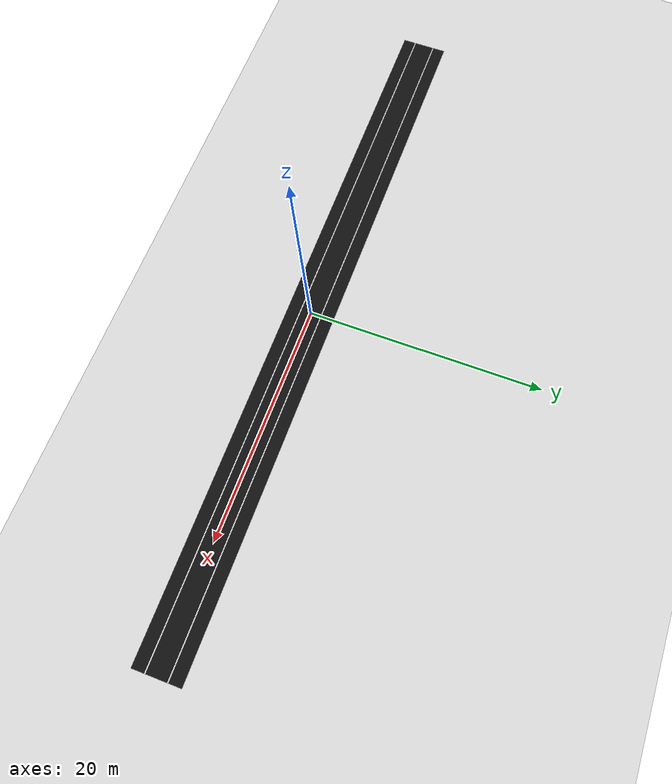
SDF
<?xml version="1.0" ?>
<sdf version="1.6">
  <world name="lane_world">
    <include>
      <uri>model://sun</uri>
    </include>

    <include>
      <uri>model://ground_plane</uri>
    </include>

    <model name="road_surface">
      <static>true</static>
      <pose>0 0 0.011 0 0 0</pose>
      <link name="road_link">
        <visual name="road_visual">
          <geometry>
            <box>
              <size>60 4 0.02</size>
            </box>
          </geometry>
          <material>
            <ambient>0.05 0.05 0.05 1</ambient>
            <diffuse>0.05 0.05 0.05 1</diffuse>
          </material>
        </visual>
        <collision name="road_collision">
          <geometry>
            <box>
              <size>60 4 0.02</size>
            </box>
          </geometry>
        </collision>
      </link>
    </model>

    <model name="left_lane_marking">
      <static>true</static>
      <pose>0 0.9 0.025 0 0 0</pose>
      <link name="left_lane_marking_link">
        <visual name="left_lane_marking_visual">
          <geometry>
            <box>
              <size>60 0.08 0.01</size>
            </box>
          </geometry>
          <material>
            <ambient>1 1 1 1</ambient>
            <diffuse>1 1 1 1</diffuse>
          </material>
        </visual>
      </link>
    </model>

    <model name="right_lane_marking">
      <static>true</static>
      <pose>0 -0.9 0.025 0 0 0</pose>
      <link name="right_lane_marking_link">
        <visual name="right_lane_marking_visual">
          <geometry>
            <box>
              <size>60 0.08 0.01</size>
            </box>
          </geometry>
          <material>
            <ambient>1 1 1 1</ambient>
            <diffuse>1 1 1 1</diffuse>
          </material>
        </visual>
      </link>
    </model>
  </world>
</sdf>
